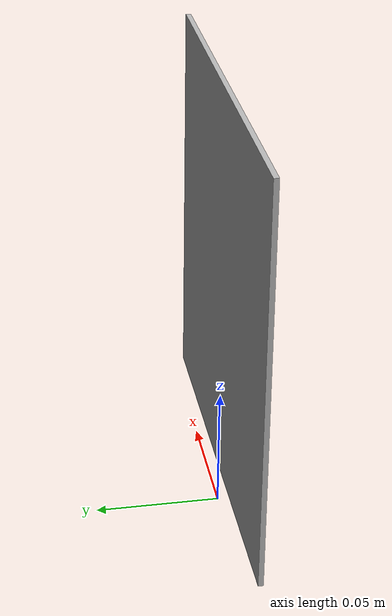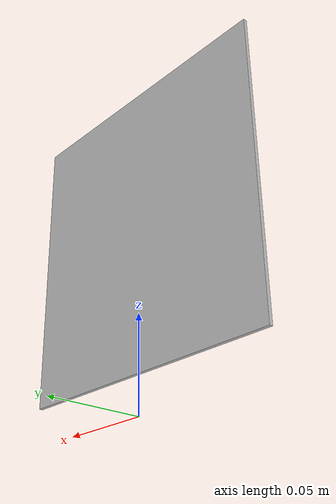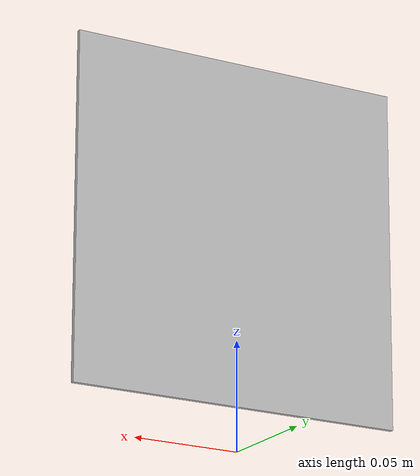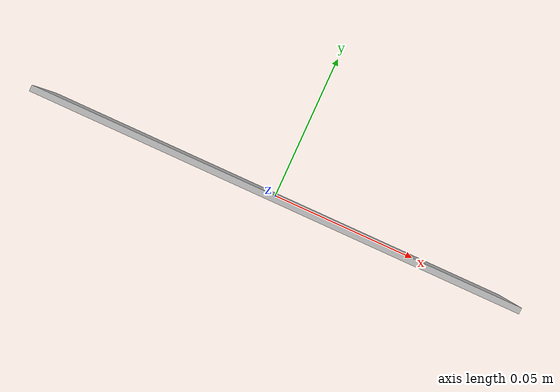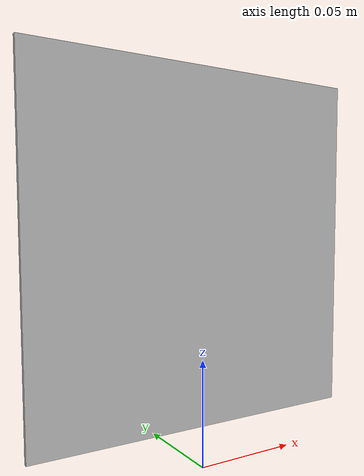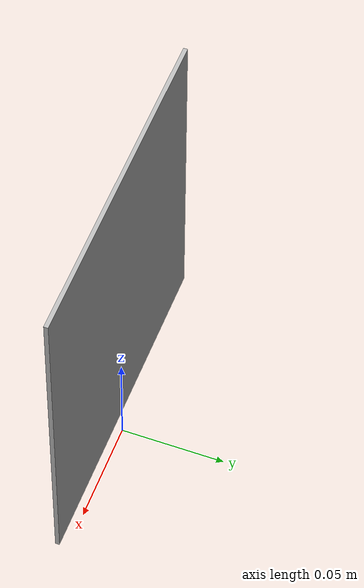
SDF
<?xml version='1.0'?>
<sdf version='1.4'>
  <model name="ArUco_25">
	<static>true</static>
          <link name='ArUco25_link'>
            <pose>0 0 .1 0 0 0</pose>

            <collision name='collision'>
              <geometry>
                <box>
                  <size>0.15 0.002 0.15</size>
                </box>
              </geometry>
            </collision>

            <visual name='visual'>
	      <lighting>0</lighting>
              <geometry>
                <mesh>
            	  <uri>model://ArUco_25/meshes/Aruco25.dae</uri>
		  <scale>1 1 1</scale>
          	</mesh>
              </geometry>
            </visual>
          </link>
  </model>
</sdf>
